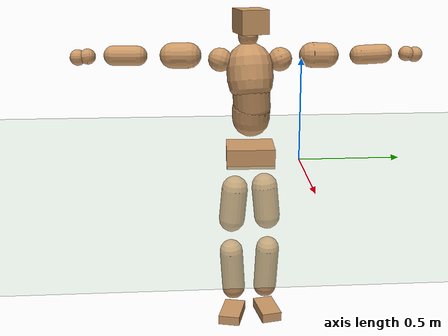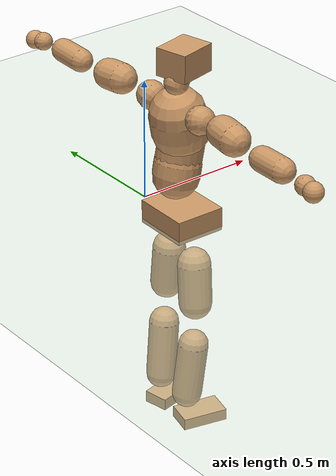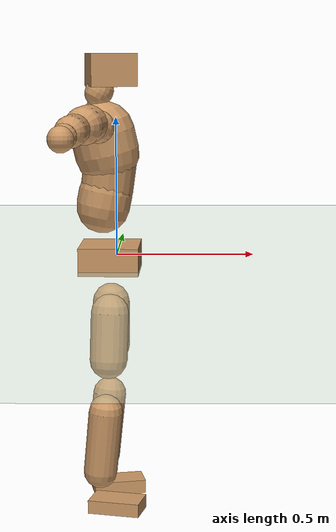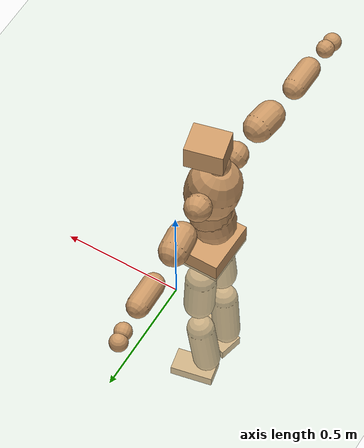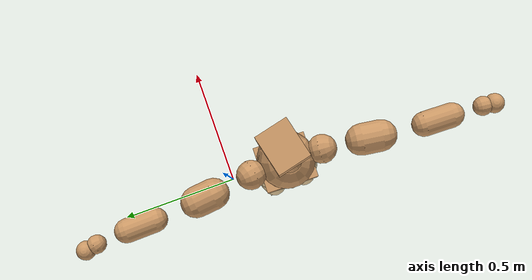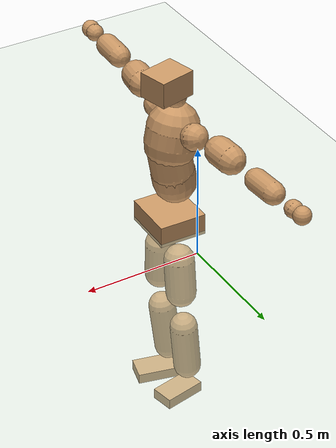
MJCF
<mujoco model="humanoid">
  <compiler coordinate="local" angle="radian"/>
  <default>
    <joint damping="0.0" armature="0.01" stiffness="0.0" limited="true"/>
    <geom conaffinity="1" condim="3" contype="7" margin="0.001" rgba="0.8 0.6 .4 1"/>
  </default>
  <asset>
    <texture type="skybox" builtin="gradient" rgb1=".4 .5 .6" rgb2="0 0 0" width="100" height="100"/>
    <texture builtin="flat" height="1278" mark="cross" markrgb="1 1 1" name="texgeom" random="0.01" rgb1="0.8 0.6 0.4" rgb2="0.8 0.6 0.4" type="cube" width="127"/>
    <texture builtin="checker" height="100" name="texplane" rgb1="0 0 0" rgb2="0.8 0.8 0.8" type="2d" width="100"/>
    <material name="MatPlane" reflectance="0.5" shininess="1" specular="1" texrepeat="60 60" texture="texplane"/>
    <material name="geom" texture="texgeom" texuniform="true"/>
  </asset>
  <worldbody>
    <light cutoff="100" diffuse="1 1 1" dir="-0 0 -1.3" directional="true" exponent="1" pos="0 0 1.3" specular=".1 .1 .1"/>
    <geom conaffinity="1" condim="3" name="floor" pos="0 0 0" rgba="0.8 0.9 0.8 1" size="100 100 .2" type="plane" material="MatPlane"/>
    <body name="Pelvis" pos="-0.0001 -0.2439 0.0381">
      <freejoint name="Pelvis"/>
      <geom type="box" contype="1" conaffinity="1" density="5359.375326" pos="-0.0104 0.0002 -0.0080" size="0.1029 0.1168 0.0475" quat="1.0000 0.0000 0.0000 -0.0091" name="Pelvis"/>
      <body name="L_Hip" pos="-0.0133 0.0645 -0.0844">
        <joint name="L_Hip_x" type="hinge" pos="0 0 0" axis="1 0 0" stiffness="1600" damping="160" armature="0.02" range="-180.0000 180.0000"/>
        <joint name="L_Hip_y" type="hinge" pos="0 0 0" axis="0 1 0" stiffness="1600" damping="160" armature="0.02" range="-180.0000 180.0000"/>
        <joint name="L_Hip_z" type="hinge" pos="0 0 0" axis="0 0 1" stiffness="1600" damping="160" armature="0.02" range="-180.0000 180.0000"/>
        <geom type="capsule" contype="1" conaffinity="1" density="2040.816327" size="0.0651" fromto="-0.0002 0.0085 -0.0947 -0.0007 0.0230 -0.2567" name="L_Hip"/>
        <body name="L_Knee" pos="-0.0009 0.0315 -0.3514">
          <joint name="L_Knee_x" type="hinge" pos="0 0 0" axis="1 0 0" stiffness="1600" damping="160" armature="0.02" range="-180.0000 180.0000"/>
          <joint name="L_Knee_y" type="hinge" pos="0 0 0" axis="0 1 0" stiffness="1600" damping="160" armature="0.02" range="-180.0000 180.0000"/>
          <joint name="L_Knee_z" type="hinge" pos="0 0 0" axis="0 0 1" stiffness="1600" damping="160" armature="0.02" range="-180.0000 180.0000"/>
          <geom type="capsule" contype="1" conaffinity="1" density="1234.567901" size="0.0593" fromto="-0.0094 -0.0041 -0.0887 -0.0335 -0.0146 -0.3179" name="L_Knee"/>
          <body name="L_Ankle" pos="-0.0429 -0.0187 -0.4065">
            <joint name="L_Ankle_x" type="hinge" pos="0 0 0" axis="1 0 0" stiffness="1600" damping="160" armature="0.02" range="-180.0000 180.0000"/>
            <joint name="L_Ankle_y" type="hinge" pos="0 0 0" axis="0 1 0" stiffness="1600" damping="160" armature="0.02" range="-180.0000 180.0000"/>
            <joint name="L_Ankle_z" type="hinge" pos="0 0 0" axis="0 0 1" stiffness="1600" damping="160" armature="0.02" range="-180.0000 180.0000"/>
            <geom type="box" contype="1" conaffinity="1" density="999.999992" pos="0.0631 0.0127 -0.0283" size="0.0919 0.051 0.0241" quat="0.9951 0.0000 0.0000 0.0990" name="L_Ankle"/>
            <body name="L_Toe" pos="0.1263 0.0254 -0.0565">
              <joint name="L_Toe_x" type="hinge" pos="0 0 0" axis="1 0 0" stiffness="1000" damping="100" armature="0.02" range="-180.0000 180.0000"/>
              <joint name="L_Toe_y" type="hinge" pos="0 0 0" axis="0 1 0" stiffness="1000" damping="100" armature="0.02" range="-180.0000 180.0000"/>
              <joint name="L_Toe_z" type="hinge" pos="0 0 0" axis="0 0 1" stiffness="1000" damping="100" armature="0.02" range="-180.0000 180.0000"/>
              <geom type="box" contype="1" conaffinity="1" density="8603812.060172" pos="0.0000 0.0000 0.0291" size="0.001 0.0026 0.0012" quat="0.9945 0.0000 0.0000 0.1050" name="L_Toe"/>
            </body>
          </body>
        </body>
      </body>
      <body name="R_Hip" pos="-0.0068 -0.0678 -0.0939">
        <joint name="R_Hip_x" type="hinge" pos="0 0 0" axis="1 0 0" stiffness="1600" damping="160" armature="0.02" range="-180.0000 180.0000"/>
        <joint name="R_Hip_y" type="hinge" pos="0 0 0" axis="0 1 0" stiffness="1600" damping="160" armature="0.02" range="-180.0000 180.0000"/>
        <joint name="R_Hip_z" type="hinge" pos="0 0 0" axis="0 0 1" stiffness="1600" damping="160" armature="0.02" range="-180.0000 180.0000"/>
        <geom type="capsule" contype="1" conaffinity="1" density="2040.816327" size="0.0652" fromto="-0.0030 -0.0090 -0.0947 -0.0083 -0.0246 -0.2596" name="R_Hip"/>
        <body name="R_Knee" pos="-0.0113 -0.0336 -0.3543">
          <joint name="R_Knee_x" type="hinge" pos="0 0 0" axis="1 0 0" stiffness="1600" damping="160" armature="0.02" range="-180.0000 180.0000"/>
          <joint name="R_Knee_y" type="hinge" pos="0 0 0" axis="0 1 0" stiffness="1600" damping="160" armature="0.02" range="-180.0000 180.0000"/>
          <joint name="R_Knee_z" type="hinge" pos="0 0 0" axis="0 0 1" stiffness="1600" damping="160" armature="0.02" range="-180.0000 180.0000"/>
          <geom type="capsule" contype="1" conaffinity="1" density="1234.567901" size="0.0591" fromto="-0.0085 0.0047 -0.0885 -0.0301 0.0167 -0.3119" name="R_Knee"/>
          <body name="R_Ankle" pos="-0.0386 0.0214 -0.4004">
            <joint name="R_Ankle_x" type="hinge" pos="0 0 0" axis="1 0 0" stiffness="1600" damping="160" armature="0.02" range="-180.0000 180.0000"/>
            <joint name="R_Ankle_y" type="hinge" pos="0 0 0" axis="0 1 0" stiffness="1600" damping="160" armature="0.02" range="-180.0000 180.0000"/>
            <joint name="R_Ankle_z" type="hinge" pos="0 0 0" axis="0 0 1" stiffness="1600" damping="160" armature="0.02" range="-180.0000 180.0000"/>
            <geom type="box" contype="1" conaffinity="1" density="1000.000024" pos="0.0668 -0.0159 -0.0296" size="0.0916 0.0543 0.0236" quat="0.9932 0.0000 0.0000 -0.1168" name="R_Ankle"/>
            <body name="R_Toe" pos="0.1336 -0.0319 -0.0592">
              <joint name="R_Toe_x" type="hinge" pos="0 0 0" axis="1 0 0" stiffness="1000" damping="100" armature="0.02" range="-180.0000 180.0000"/>
              <joint name="R_Toe_y" type="hinge" pos="0 0 0" axis="0 1 0" stiffness="1000" damping="100" armature="0.02" range="-180.0000 180.0000"/>
              <joint name="R_Toe_z" type="hinge" pos="0 0 0" axis="0 0 1" stiffness="1000" damping="100" armature="0.02" range="-180.0000 180.0000"/>
              <geom type="box" contype="1" conaffinity="1" density="7893931.182624" pos="0.0000 0.0000 0.0301" size="0.0013 0.0027 0.0012" quat="0.9941 0.0000 0.0000 -0.1082" name="R_Toe"/>
            </body>
          </body>
        </body>
      </body>
      <body name="Torso" pos="-0.042 0.0044 0.1306">
        <joint name="Torso_x" type="hinge" pos="0 0 0" axis="1 0 0" stiffness="2000" damping="200" armature="0.02" range="-180.0000 180.0000"/>
        <joint name="Torso_y" type="hinge" pos="0 0 0" axis="0 1 0" stiffness="2000" damping="200" armature="0.02" range="-180.0000 180.0000"/>
        <joint name="Torso_z" type="hinge" pos="0 0 0" axis="0 0 1" stiffness="2000" damping="200" armature="0.02" range="-180.0000 180.0000"/>
        <geom type="capsule" contype="1" conaffinity="1" density="2040.816327" size="0.0925" fromto="0.0182 0.0029 0.0907 0.0079 0.0013 0.0396" name="Torso"/>
        <body name="Spine" pos="0.0261 0.0041 0.1302">
          <joint name="Spine_x" type="hinge" pos="0 0 0" axis="1 0 0" stiffness="2000" damping="200" armature="0.02" range="-180.0000 180.0000"/>
          <joint name="Spine_y" type="hinge" pos="0 0 0" axis="0 1 0" stiffness="2000" damping="200" armature="0.02" range="-180.0000 180.0000"/>
          <joint name="Spine_z" type="hinge" pos="0 0 0" axis="0 0 1" stiffness="2000" damping="200" armature="0.02" range="-180.0000 180.0000"/>
          <geom type="capsule" contype="1" conaffinity="1" density="2040.816327" size="0.0906" fromto="0.0125 -0.0058 0.0896 -0.0050 0.0023 -0.0360" name="Spine"/>
          <body name="Chest" pos="0.0075 -0.0035 0.0536">
            <joint name="Chest_x" type="hinge" pos="0 0 0" axis="1 0 0" stiffness="2000" damping="200" armature="0.02" range="-180.0000 180.0000"/>
            <joint name="Chest_y" type="hinge" pos="0 0 0" axis="0 1 0" stiffness="2000" damping="200" armature="0.02" range="-180.0000 180.0000"/>
            <joint name="Chest_z" type="hinge" pos="0 0 0" axis="0 0 1" stiffness="2000" damping="200" armature="0.02" range="-180.0000 180.0000"/>
            <geom type="capsule" contype="1" conaffinity="1" density="2040.816327" size="0.1113" fromto="-0.0242 -0.0062 0.1084 -0.0092 -0.0023 0.0412" name="Chest"/>
            <body name="Neck" pos="-0.0529 -0.0151 0.2133">
              <joint name="Neck_x" type="hinge" pos="0 0 0" axis="1 0 0" stiffness="1000" damping="100" armature="0.02" range="-180.0000 180.0000"/>
              <joint name="Neck_y" type="hinge" pos="0 0 0" axis="0 1 0" stiffness="1000" damping="100" armature="0.02" range="-180.0000 180.0000"/>
              <joint name="Neck_z" type="hinge" pos="0 0 0" axis="0 0 1" stiffness="1000" damping="100" armature="0.02" range="-180.0000 180.0000"/>
              <geom type="capsule" contype="1" conaffinity="1" density="1000" size="0.0473" fromto="0.0224 0.0044 0.0415 0.0164 0.0032 0.0304" name="Neck"/>
              <body name="Head" pos="0.0388 0.0077 0.0718">
                <joint name="Head_x" type="hinge" pos="0 0 0" axis="1 0 0" stiffness="1000" damping="100" armature="0.02" range="-180.0000 180.0000"/>
                <joint name="Head_y" type="hinge" pos="0 0 0" axis="0 1 0" stiffness="1000" damping="100" armature="0.02" range="-180.0000 180.0000"/>
                <joint name="Head_z" type="hinge" pos="0 0 0" axis="0 0 1" stiffness="1000" damping="100" armature="0.02" range="-180.0000 180.0000"/>
                <geom type="box" contype="1" conaffinity="1" density="2250.000239" pos="0.0204 0.0048 0.0369" size="0.0793 0.066 0.0554" quat="0.9932 0.0000 0.0000 0.1161" name="Head"/>
              </body>
            </body>
            <body name="L_Thorax" pos="-0.022 0.075 0.118">
              <joint name="L_Thorax_x" type="hinge" pos="0 0 0" axis="1 0 0" stiffness="1000" damping="100" armature="0.02" range="-180.0000 180.0000"/>
              <joint name="L_Thorax_y" type="hinge" pos="0 0 0" axis="0 1 0" stiffness="1000" damping="100" armature="0.02" range="-180.0000 180.0000"/>
              <joint name="L_Thorax_z" type="hinge" pos="0 0 0" axis="0 0 1" stiffness="1000" damping="100" armature="0.02" range="-180.0000 180.0000"/>
              <geom type="capsule" contype="1" conaffinity="1" density="1000" size="0.0567" fromto="-0.0118 0.0651 0.0196 -0.0121 0.0669 0.0202" name="L_Thorax"/>
              <body name="L_Shoulder" pos="-0.0238 0.132 0.0398">
                <joint name="L_Shoulder_x" type="hinge" pos="0 0 0" axis="1 0 0" stiffness="1000" damping="100" armature="0.02" range="-720.0000 720.0000"/>
                <joint name="L_Shoulder_y" type="hinge" pos="0 0 0" axis="0 1 0" stiffness="1000" damping="100" armature="0.02" range="-720.0000 720.0000"/>
                <joint name="L_Shoulder_z" type="hinge" pos="0 0 0" axis="0 0 1" stiffness="1000" damping="100" armature="0.02" range="-720.0000 720.0000"/>
                <geom type="capsule" contype="1" conaffinity="1" density="1000" size="0.0602" fromto="-0.0088 0.0896 -0.0040 -0.0159 0.1613 -0.0072" name="L_Shoulder"/>
                <body name="L_Elbow" pos="-0.0248 0.2509 -0.0113">
                  <joint name="L_Elbow_x" type="hinge" pos="0 0 0" axis="1 0 0" stiffness="1000" damping="100" armature="0.02" range="-720.0000 720.0000"/>
                  <joint name="L_Elbow_y" type="hinge" pos="0 0 0" axis="0 1 0" stiffness="1000" damping="100" armature="0.02" range="-720.0000 720.0000"/>
                  <joint name="L_Elbow_z" type="hinge" pos="0 0 0" axis="0 0 1" stiffness="1000" damping="100" armature="0.02" range="-720.0000 720.0000"/>
                  <geom type="capsule" contype="1" conaffinity="1" density="1000" size="0.0466" fromto="-0.0018 0.0765 0.0031 -0.0045 0.1899 0.0077" name="L_Elbow"/>
                  <body name="L_Wrist" pos="-0.0062 0.2665 0.0108">
                    <joint name="L_Wrist_x" type="hinge" pos="0 0 0" axis="1 0 0" stiffness="600" damping="60" armature="0.02" range="-180.0000 180.0000"/>
                    <joint name="L_Wrist_y" type="hinge" pos="0 0 0" axis="0 1 0" stiffness="600" damping="60" armature="0.02" range="-180.0000 180.0000"/>
                    <joint name="L_Wrist_z" type="hinge" pos="0 0 0" axis="0 0 1" stiffness="600" damping="60" armature="0.02" range="-180.0000 180.0000"/>
                    <geom type="capsule" contype="1" conaffinity="1" density="1000" size="0.0361" fromto="-0.0079 0.0443 -0.0052 -0.0083 0.0463 -0.0055" name="L_Wrist"/>
                    <body name="L_Hand" pos="-0.0162 0.0906 -0.0107">
                      <joint name="L_Hand_x" type="hinge" pos="0 0 0" axis="1 0 0" stiffness="600" damping="60" armature="0.02" range="-180.0000 180.0000"/>
                      <joint name="L_Hand_y" type="hinge" pos="0 0 0" axis="0 1 0" stiffness="600" damping="60" armature="0.02" range="-180.0000 180.0000"/>
                      <joint name="L_Hand_z" type="hinge" pos="0 0 0" axis="0 0 1" stiffness="600" damping="60" armature="0.02" range="-180.0000 180.0000"/>
                      <geom type="sphere" contype="1" conaffinity="1" density="1000" size="0.0372" pos="0.0000 0.0000 0.0000" name="L_Hand"/>
                    </body>
                  </body>
                </body>
              </body>
            </body>
            <body name="R_Thorax" pos="-0.0254 -0.0854 0.1177">
              <joint name="R_Thorax_x" type="hinge" pos="0 0 0" axis="1 0 0" stiffness="1000" damping="100" armature="0.02" range="-180.0000 180.0000"/>
              <joint name="R_Thorax_y" type="hinge" pos="0 0 0" axis="0 1 0" stiffness="1000" damping="100" armature="0.02" range="-180.0000 180.0000"/>
              <joint name="R_Thorax_z" type="hinge" pos="0 0 0" axis="0 0 1" stiffness="1000" damping="100" armature="0.02" range="-180.0000 180.0000"/>
              <geom type="capsule" contype="1" conaffinity="1" density="1000" size="0.0563" fromto="-0.0055 -0.0589 0.0210 -0.0057 -0.0608 0.0216" name="R_Thorax"/>
              <body name="R_Shoulder" pos="-0.0112 -0.1196 0.0426">
                <joint name="R_Shoulder_x" type="hinge" pos="0 0 0" axis="1 0 0" stiffness="1000" damping="100" armature="0.02" range="-720.0000 720.0000"/>
                <joint name="R_Shoulder_y" type="hinge" pos="0 0 0" axis="0 1 0" stiffness="1000" damping="100" armature="0.02" range="-720.0000 720.0000"/>
                <joint name="R_Shoulder_z" type="hinge" pos="0 0 0" axis="0 0 1" stiffness="1000" damping="100" armature="0.02" range="-720.0000 720.0000"/>
                <geom type="capsule" contype="1" conaffinity="1" density="1000" size="0.061" fromto="-0.0125 -0.0901 -0.0020 -0.0231 -0.1668 -0.0038" name="R_Shoulder"/>
                <body name="R_Elbow" pos="-0.0356 -0.2569 -0.0058">
                  <joint name="R_Elbow_x" type="hinge" pos="0 0 0" axis="1 0 0" stiffness="1000" damping="100" armature="0.02" range="-720.0000 720.0000"/>
                  <joint name="R_Elbow_y" type="hinge" pos="0 0 0" axis="0 1 0" stiffness="1000" damping="100" armature="0.02" range="-720.0000 720.0000"/>
                  <joint name="R_Elbow_z" type="hinge" pos="0 0 0" axis="0 0 1" stiffness="1000" damping="100" armature="0.02" range="-720.0000 720.0000"/>
                  <geom type="capsule" contype="1" conaffinity="1" density="1000" size="0.0479" fromto="-0.0020 -0.0778 0.0008 -0.0049 -0.1888 0.0019" name="R_Elbow"/>
                  <body name="R_Wrist" pos="-0.0069 -0.2667 0.0026">
                    <joint name="R_Wrist_x" type="hinge" pos="0 0 0" axis="1 0 0" stiffness="600" damping="60" armature="0.02" range="-180.0000 180.0000"/>
                    <joint name="R_Wrist_y" type="hinge" pos="0 0 0" axis="0 1 0" stiffness="600" damping="60" armature="0.02" range="-180.0000 180.0000"/>
                    <joint name="R_Wrist_z" type="hinge" pos="0 0 0" axis="0 0 1" stiffness="600" damping="60" armature="0.02" range="-180.0000 180.0000"/>
                    <geom type="capsule" contype="1" conaffinity="1" density="1000" size="0.0374" fromto="-0.0049 -0.0458 -0.0045 -0.0051 -0.0478 -0.0047" name="R_Wrist"/>
                    <body name="R_Hand" pos="-0.0099 -0.0935 -0.0092">
                      <joint name="R_Hand_x" type="hinge" pos="0 0 0" axis="1 0 0" stiffness="600" damping="60" armature="0.02" range="-180.0000 180.0000"/>
                      <joint name="R_Hand_y" type="hinge" pos="0 0 0" axis="0 1 0" stiffness="600" damping="60" armature="0.02" range="-180.0000 180.0000"/>
                      <joint name="R_Hand_z" type="hinge" pos="0 0 0" axis="0 0 1" stiffness="600" damping="60" armature="0.02" range="-180.0000 180.0000"/>
                      <geom type="sphere" contype="1" conaffinity="1" density="1000" size="0.0382" pos="0.0000 0.0000 0.0000" name="R_Hand"/>
                    </body>
                  </body>
                </body>
              </body>
            </body>
          </body>
        </body>
      </body>
    </body>
  </worldbody>
  <actuator>
    <motor name="L_Hip_x" joint="L_Hip_x" gear="500"/>
    <motor name="L_Hip_y" joint="L_Hip_y" gear="500"/>
    <motor name="L_Hip_z" joint="L_Hip_z" gear="500"/>
    <motor name="L_Knee_x" joint="L_Knee_x" gear="500"/>
    <motor name="L_Knee_y" joint="L_Knee_y" gear="500"/>
    <motor name="L_Knee_z" joint="L_Knee_z" gear="500"/>
    <motor name="L_Ankle_x" joint="L_Ankle_x" gear="500"/>
    <motor name="L_Ankle_y" joint="L_Ankle_y" gear="500"/>
    <motor name="L_Ankle_z" joint="L_Ankle_z" gear="500"/>
    <motor name="L_Toe_x" joint="L_Toe_x" gear="500"/>
    <motor name="L_Toe_y" joint="L_Toe_y" gear="500"/>
    <motor name="L_Toe_z" joint="L_Toe_z" gear="500"/>
    <motor name="R_Hip_x" joint="R_Hip_x" gear="500"/>
    <motor name="R_Hip_y" joint="R_Hip_y" gear="500"/>
    <motor name="R_Hip_z" joint="R_Hip_z" gear="500"/>
    <motor name="R_Knee_x" joint="R_Knee_x" gear="500"/>
    <motor name="R_Knee_y" joint="R_Knee_y" gear="500"/>
    <motor name="R_Knee_z" joint="R_Knee_z" gear="500"/>
    <motor name="R_Ankle_x" joint="R_Ankle_x" gear="500"/>
    <motor name="R_Ankle_y" joint="R_Ankle_y" gear="500"/>
    <motor name="R_Ankle_z" joint="R_Ankle_z" gear="500"/>
    <motor name="R_Toe_x" joint="R_Toe_x" gear="500"/>
    <motor name="R_Toe_y" joint="R_Toe_y" gear="500"/>
    <motor name="R_Toe_z" joint="R_Toe_z" gear="500"/>
    <motor name="Torso_x" joint="Torso_x" gear="500"/>
    <motor name="Torso_y" joint="Torso_y" gear="500"/>
    <motor name="Torso_z" joint="Torso_z" gear="500"/>
    <motor name="Spine_x" joint="Spine_x" gear="500"/>
    <motor name="Spine_y" joint="Spine_y" gear="500"/>
    <motor name="Spine_z" joint="Spine_z" gear="500"/>
    <motor name="Chest_x" joint="Chest_x" gear="500"/>
    <motor name="Chest_y" joint="Chest_y" gear="500"/>
    <motor name="Chest_z" joint="Chest_z" gear="500"/>
    <motor name="Neck_x" joint="Neck_x" gear="500"/>
    <motor name="Neck_y" joint="Neck_y" gear="500"/>
    <motor name="Neck_z" joint="Neck_z" gear="500"/>
    <motor name="Head_x" joint="Head_x" gear="500"/>
    <motor name="Head_y" joint="Head_y" gear="500"/>
    <motor name="Head_z" joint="Head_z" gear="500"/>
    <motor name="L_Thorax_x" joint="L_Thorax_x" gear="500"/>
    <motor name="L_Thorax_y" joint="L_Thorax_y" gear="500"/>
    <motor name="L_Thorax_z" joint="L_Thorax_z" gear="500"/>
    <motor name="L_Shoulder_x" joint="L_Shoulder_x" gear="500"/>
    <motor name="L_Shoulder_y" joint="L_Shoulder_y" gear="500"/>
    <motor name="L_Shoulder_z" joint="L_Shoulder_z" gear="500"/>
    <motor name="L_Elbow_x" joint="L_Elbow_x" gear="500"/>
    <motor name="L_Elbow_y" joint="L_Elbow_y" gear="500"/>
    <motor name="L_Elbow_z" joint="L_Elbow_z" gear="500"/>
    <motor name="L_Wrist_x" joint="L_Wrist_x" gear="500"/>
    <motor name="L_Wrist_y" joint="L_Wrist_y" gear="500"/>
    <motor name="L_Wrist_z" joint="L_Wrist_z" gear="500"/>
    <motor name="L_Hand_x" joint="L_Hand_x" gear="500"/>
    <motor name="L_Hand_y" joint="L_Hand_y" gear="500"/>
    <motor name="L_Hand_z" joint="L_Hand_z" gear="500"/>
    <motor name="R_Thorax_x" joint="R_Thorax_x" gear="500"/>
    <motor name="R_Thorax_y" joint="R_Thorax_y" gear="500"/>
    <motor name="R_Thorax_z" joint="R_Thorax_z" gear="500"/>
    <motor name="R_Shoulder_x" joint="R_Shoulder_x" gear="500"/>
    <motor name="R_Shoulder_y" joint="R_Shoulder_y" gear="500"/>
    <motor name="R_Shoulder_z" joint="R_Shoulder_z" gear="500"/>
    <motor name="R_Elbow_x" joint="R_Elbow_x" gear="500"/>
    <motor name="R_Elbow_y" joint="R_Elbow_y" gear="500"/>
    <motor name="R_Elbow_z" joint="R_Elbow_z" gear="500"/>
    <motor name="R_Wrist_x" joint="R_Wrist_x" gear="500"/>
    <motor name="R_Wrist_y" joint="R_Wrist_y" gear="500"/>
    <motor name="R_Wrist_z" joint="R_Wrist_z" gear="500"/>
    <motor name="R_Hand_x" joint="R_Hand_x" gear="500"/>
    <motor name="R_Hand_y" joint="R_Hand_y" gear="500"/>
    <motor name="R_Hand_z" joint="R_Hand_z" gear="500"/>
  </actuator>
  <contact>
    <exclude body1="Torso" body2="Chest"/>
    <exclude body1="Head" body2="Chest"/>
    <exclude body1="R_Knee" body2="R_Toe"/>
    <exclude body1="R_Knee" body2="L_Ankle"/>
    <exclude body1="R_Knee" body2="L_Toe"/>
    <exclude body1="L_Knee" body2="L_Toe"/>
    <exclude body1="L_Knee" body2="R_Ankle"/>
    <exclude body1="L_Knee" body2="R_Toe"/>
    <exclude body1="L_Shoulder" body2="Chest"/>
    <exclude body1="R_Shoulder" body2="Chest"/>
  </contact>
  <sensor/>
  <size njmax="700" nconmax="700"/>
</mujoco>
